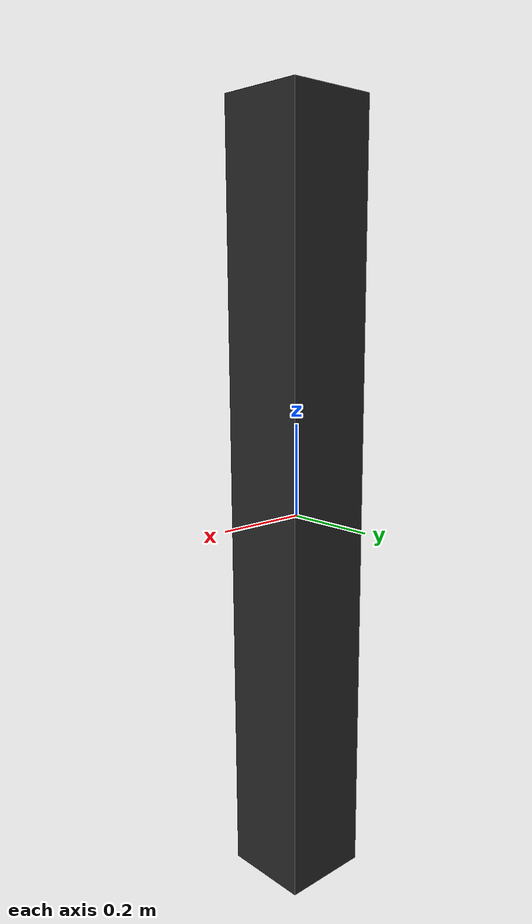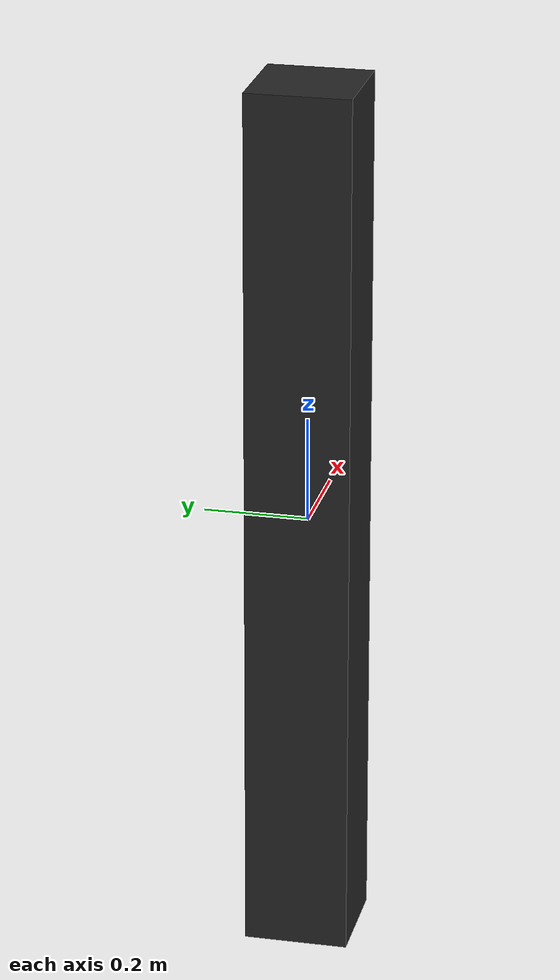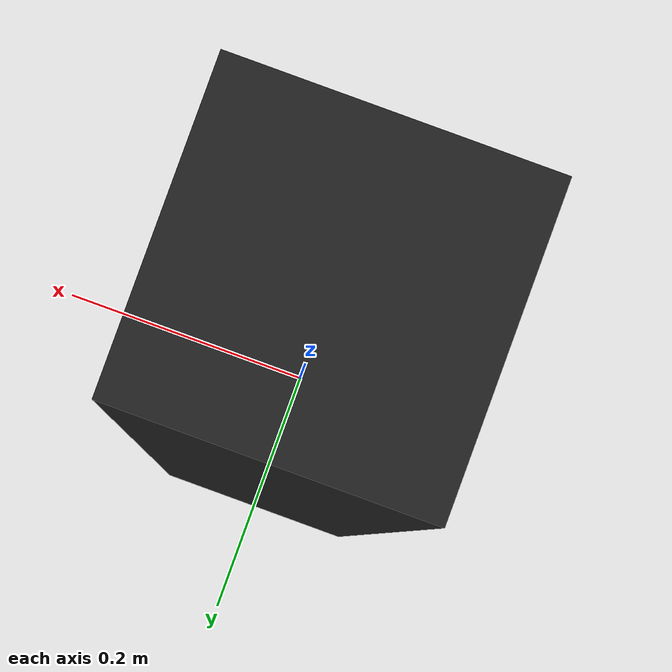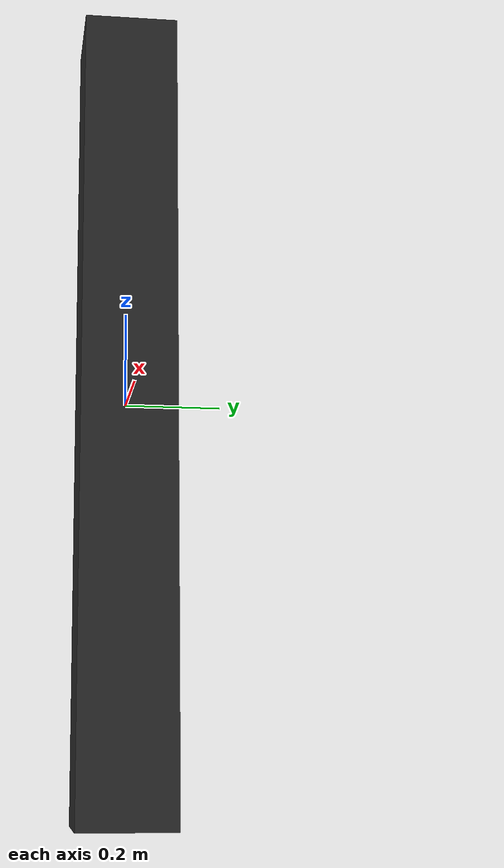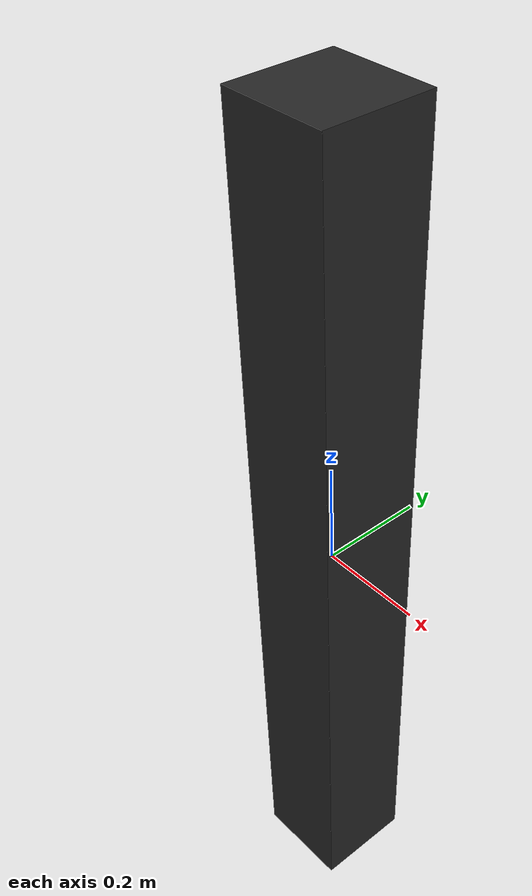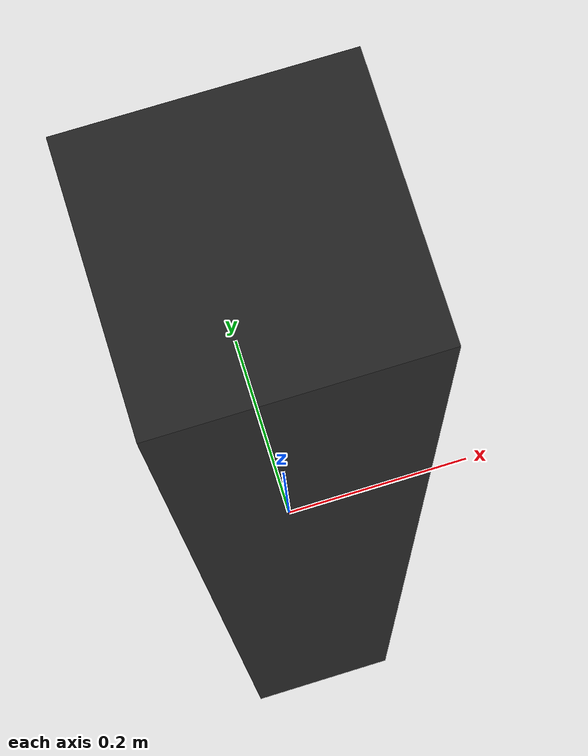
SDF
<?xml version='1.0' encoding='utf-8'?>
<sdf version='1.10'>
<model name='pole'>
  <link name='pole_link'>
    <enable_wind>false</enable_wind>
    <collision name='pole_collision'>
      <geometry><box><size>0.2 0.2 1.7</size></box></geometry>
      <surface>
        <friction><ode/></friction>
        <bounce/>
        <contact/>
      </surface>
    </collision>
    <visual name='pole_visual'>
      <geometry><box><size>0.2 0.2 1.7</size></box></geometry>
      <material>
        <diffuse>0.15 0.15 0.15 1</diffuse>
        <specular>1 1 1 1</specular>
      </material>
    </visual>
  </link>
  <self_collide>false</self_collide>
  <static>true</static>
</model>
</sdf>
